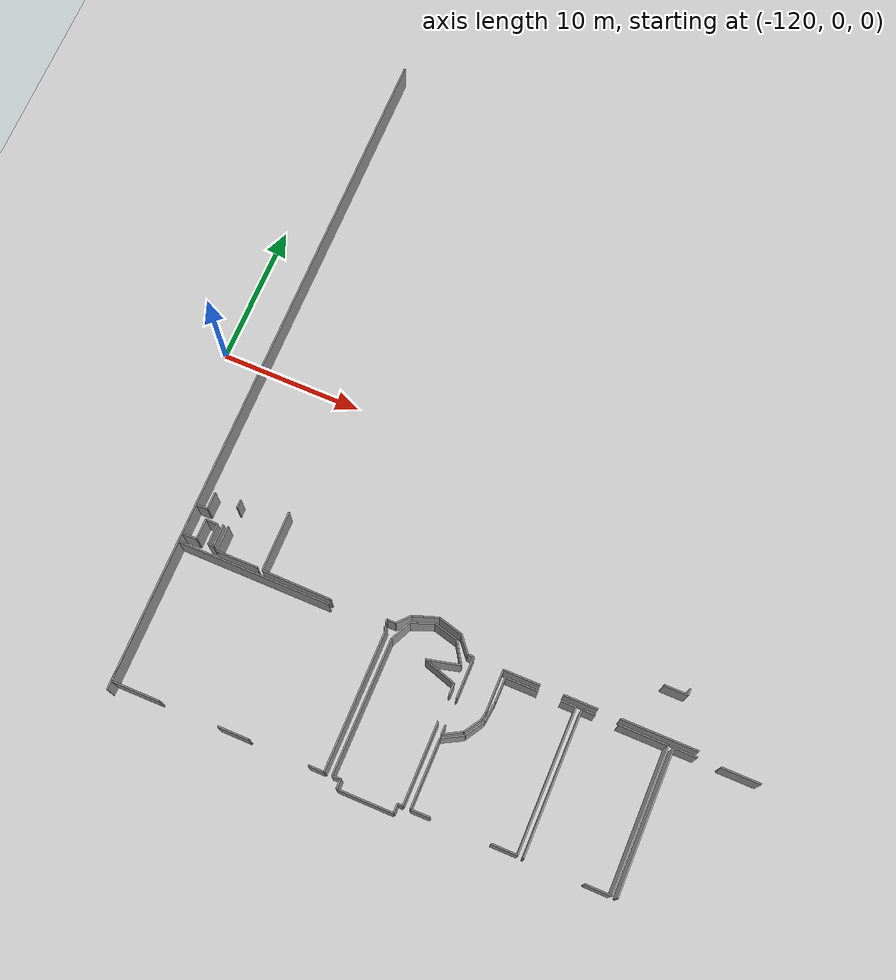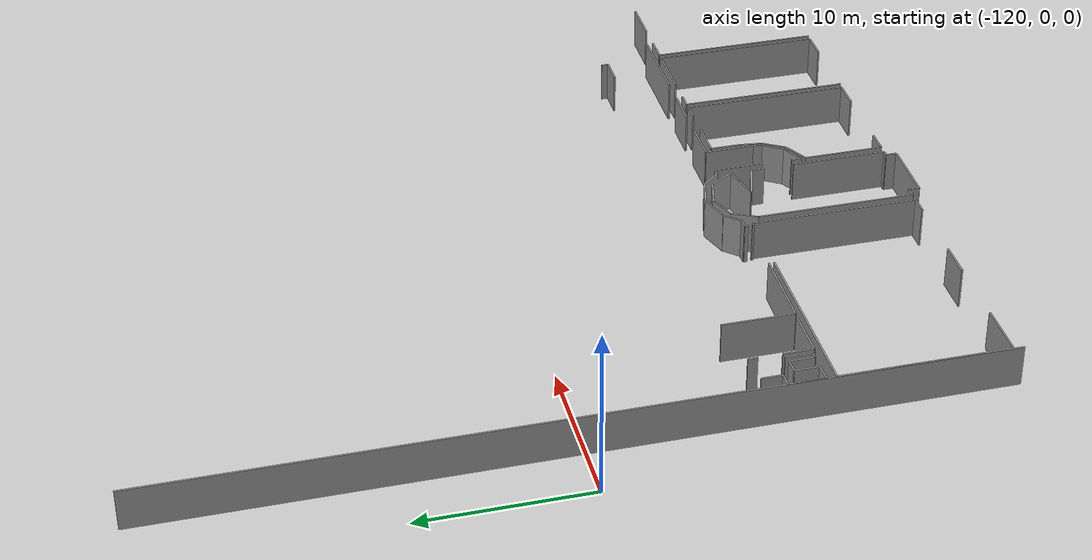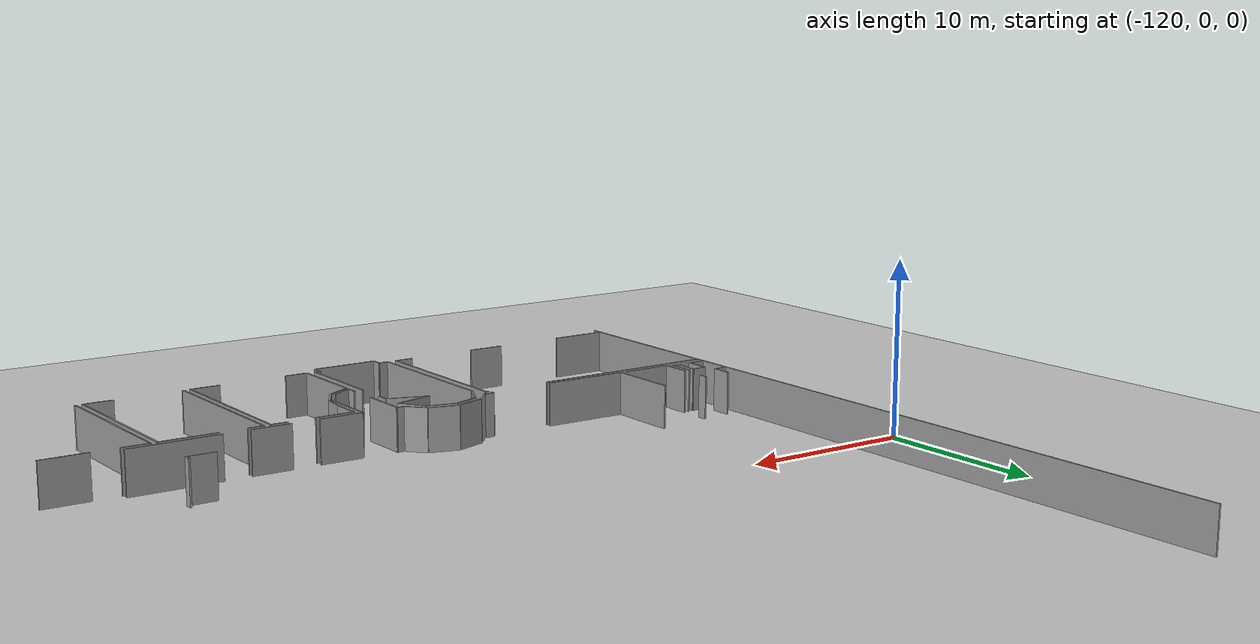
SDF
<sdf version="1.6">
 <world name="default">
  <model name="ground_plane">
   <static>1</static>
   <link name="link">
    <collision name="collision">
     <geometry><plane><normal>0 0 1</normal><size>100 100</size></plane></geometry>
     <surface><friction><ode><mu>100</mu><mu2>50</mu2></ode></friction></surface>
    </collision>
    <visual name="visual">
     <cast_shadows>0</cast_shadows>
     <geometry><plane><normal>0 0 1</normal><size>100 100</size></plane></geometry>
     <material>
      <script><uri>file://media/materials/scripts/gazebo.material</uri><name>Gazebo/Grey</name></script>
     </material>
    </visual>
   </link>
  </model>
  <model name="0510035343_A_40_1_102">
   <static>1</static>
   <link name="Wall_8">
    <collision name="Wall_8_Collision">
     <geometry><box><size>4.25859278301 0.1 2.5</size></box></geometry>
     <pose>2.12929639151 0 1.25 0 0 0</pose>
    </collision>
    <visual name="Wall_8_Visual">
     <pose>2.12929639151 0 1.25 0 0 0</pose>
     <geometry><box><size>4.25859278301 0.1 2.5</size></box></geometry>
     <material>
      <script><uri>file://media/materials/scripts/gazebo.material</uri><name>Gazebo/Grey</name></script>
      <ambient>1 1 1 1</ambient>
     </material>
    </visual>
    <pose>5.92186359453 -37.6509568695 0 0 0 1.57079632679</pose>
   </link>
   <link name="Wall_24">
    <collision name="Wall_24_Collision">
     <geometry><box><size>1.65362277445 0.1 2.5</size></box></geometry>
     <pose>0.826811387223 0 1.25 0 0 0</pose>
    </collision>
    <visual name="Wall_24_Visual">
     <pose>0.826811387223 0 1.25 0 0 0</pose>
     <geometry><box><size>1.65362277445 0.1 2.5</size></box></geometry>
     <material>
      <script><uri>file://media/materials/scripts/gazebo.material</uri><name>Gazebo/Grey</name></script>
      <ambient>1 1 1 1</ambient>
     </material>
    </visual>
    <pose>32.8454727221 -34.5011266622 0 0 0 0.0</pose>
   </link>
   <link name="Wall_25">
    <collision name="Wall_25_Collision">
     <geometry><box><size>0.434923355232 0.1 2.5</size></box></geometry>
     <pose>0.217461677616 0 1.25 0 0 0</pose>
    </collision>
    <visual name="Wall_25_Visual">
     <pose>0.217461677616 0 1.25 0 0 0</pose>
     <geometry><box><size>0.434923355232 0.1 2.5</size></box></geometry>
     <material>
      <script><uri>file://media/materials/scripts/gazebo.material</uri><name>Gazebo/Grey</name></script>
      <ambient>1 1 1 1</ambient>
     </material>
    </visual>
    <pose>34.4990954965 -34.5011266622 0 0 0 1.57079632679</pose>
   </link>
   <link name="Wall_39">
    <collision name="Wall_39_Collision">
     <geometry><box><size>5.33180995906 0.1 2.5</size></box></geometry>
     <pose>2.66590497953 0 1.25 0 0 0</pose>
    </collision>
    <visual name="Wall_39_Visual">
     <pose>2.66590497953 0 1.25 0 0 0</pose>
     <geometry><box><size>5.33180995906 0.1 2.5</size></box></geometry>
     <material>
      <script><uri>file://media/materials/scripts/gazebo.material</uri><name>Gazebo/Grey</name></script>
      <ambient>1 1 1 1</ambient>
     </material>
    </visual>
    <pose>36.3885873877 -37.5938303342 0 0 0 3.14159265359</pose>
   </link>
   <link name="Wall_40">
    <collision name="Wall_40_Collision">
     <geometry><box><size>2.36224570758 0.1 2.5</size></box></geometry>
     <pose>1.18112285379 0 1.25 0 0 0</pose>
    </collision>
    <visual name="Wall_40_Visual">
     <pose>1.18112285379 0 1.25 0 0 0</pose>
     <geometry><box><size>2.36224570758 0.1 2.5</size></box></geometry>
     <material>
      <script><uri>file://media/materials/scripts/gazebo.material</uri><name>Gazebo/Grey</name></script>
      <ambient>1 1 1 1</ambient>
     </material>
    </visual>
    <pose>29.4991272335 -37.5938303342 0 0 0 3.14159265359</pose>
   </link>
   <link name="Wall_41">
    <collision name="Wall_41_Collision">
     <geometry><box><size>2.56891681742 0.1 2.5</size></box></geometry>
     <pose>1.28445840871 0 1.25 0 0 0</pose>
    </collision>
    <visual name="Wall_41_Visual">
     <pose>1.28445840871 0 1.25 0 0 0</pose>
     <geometry><box><size>2.56891681742 0.1 2.5</size></box></geometry>
     <material>
      <script><uri>file://media/materials/scripts/gazebo.material</uri><name>Gazebo/Grey</name></script>
      <ambient>1 1 1 1</ambient>
     </material>
    </visual>
    <pose>25.525151544 -37.5938303342 0 0 0 3.14159265359</pose>
   </link>
   <link name="Wall_42">
    <collision name="Wall_42_Collision">
     <geometry><box><size>2.96626360722 0.1 2.5</size></box></geometry>
     <pose>1.48313180361 0 1.25 0 0 0</pose>
    </collision>
    <visual name="Wall_42_Visual">
     <pose>1.48313180361 0 1.25 0 0 0</pose>
     <geometry><box><size>2.96626360722 0.1 2.5</size></box></geometry>
     <material>
      <script><uri>file://media/materials/scripts/gazebo.material</uri><name>Gazebo/Grey</name></script>
      <ambient>1 1 1 1</ambient>
     </material>
    </visual>
    <pose>22.9562347266 -37.5938303342 0 0 0 -1.57079632679</pose>
   </link>
   <link name="Wall_43">
    <collision name="Wall_43_Collision">
     <geometry><box><size>0.563709836177 0.1 2.5</size></box></geometry>
     <pose>0.281854918089 0 1.25 0 0 0</pose>
    </collision>
    <visual name="Wall_43_Visual">
     <pose>0.281854918089 0 1.25 0 0 0</pose>
     <geometry><box><size>0.563709836177 0.1 2.5</size></box></geometry>
     <material>
      <script><uri>file://media/materials/scripts/gazebo.material</uri><name>Gazebo/Grey</name></script>
      <ambient>1 1 1 1</ambient>
     </material>
    </visual>
    <pose>22.9562347266 -40.5600939414 0 0 0 -1.74142440143</pose>
   </link>
   <link name="Wall_44">
    <collision name="Wall_44_Collision">
     <geometry><box><size>1.35169558649 0.1 2.5</size></box></geometry>
     <pose>0.675847793244 0 1.25 0 0 0</pose>
    </collision>
    <visual name="Wall_44_Visual">
     <pose>0.675847793244 0 1.25 0 0 0</pose>
     <geometry><box><size>1.35169558649 0.1 2.5</size></box></geometry>
     <material>
      <script><uri>file://media/materials/scripts/gazebo.material</uri><name>Gazebo/Grey</name></script>
      <ambient>1 1 1 1</ambient>
     </material>
    </visual>
    <pose>22.860516043 -41.11561776 0 0 0 -2.1432736838</pose>
   </link>
   <link name="Wall_45">
    <collision name="Wall_45_Collision">
     <geometry><box><size>1.43572895688 0.1 2.5</size></box></geometry>
     <pose>0.71786447844 0 1.25 0 0 0</pose>
    </collision>
    <visual name="Wall_45_Visual">
     <pose>0.71786447844 0 1.25 0 0 0</pose>
     <geometry><box><size>1.43572895688 0.1 2.5</size></box></geometry>
     <material>
      <script><uri>file://media/materials/scripts/gazebo.material</uri><name>Gazebo/Grey</name></script>
      <ambient>1 1 1 1</ambient>
     </material>
    </visual>
    <pose>22.1282808087 -42.2518010727 0 0 0 -2.62683343816</pose>
   </link>
   <link name="Wall_46">
    <collision name="Wall_46_Collision">
     <geometry><box><size>0.643879526484 0.1 2.5</size></box></geometry>
     <pose>0.321939763242 0 1.25 0 0 0</pose>
    </collision>
    <visual name="Wall_46_Visual">
     <pose>0.321939763242 0 1.25 0 0 0</pose>
     <geometry><box><size>0.643879526484 0.1 2.5</size></box></geometry>
     <material>
      <script><uri>file://media/materials/scripts/gazebo.material</uri><name>Gazebo/Grey</name></script>
      <ambient>1 1 1 1</ambient>
     </material>
    </visual>
    <pose>20.8786061125 -42.9586467359 0 0 0 1.57079632679</pose>
   </link>
   <link name="Wall_47">
    <collision name="Wall_47_Collision">
     <geometry><box><size>2.92843314609 0.1 2.5</size></box></geometry>
     <pose>1.46421657304 0 1.25 0 0 0</pose>
    </collision>
    <visual name="Wall_47_Visual">
     <pose>1.46421657304 0 1.25 0 0 0</pose>
     <geometry><box><size>2.92843314609 0.1 2.5</size></box></geometry>
     <material>
      <script><uri>file://media/materials/scripts/gazebo.material</uri><name>Gazebo/Grey</name></script>
      <ambient>1 1 1 1</ambient>
     </material>
    </visual>
    <pose>20.8786061125 -40.4844330191 0 0 0 1.57079632679</pose>
   </link>
   <link name="Wall_48">
    <collision name="Wall_48_Collision">
     <geometry><box><size>0.416388968231 0.1 2.5</size></box></geometry>
     <pose>0.208194484116 0 1.25 0 0 0</pose>
    </collision>
    <visual name="Wall_48_Visual">
     <pose>0.208194484116 0 1.25 0 0 0</pose>
     <geometry><box><size>0.416388968231 0.1 2.5</size></box></geometry>
     <material>
      <script><uri>file://media/materials/scripts/gazebo.material</uri><name>Gazebo/Grey</name></script>
      <ambient>1 1 1 1</ambient>
     </material>
    </visual>
    <pose>20.8786061125 -37.5559998731 0 0 0 3.14159265359</pose>
   </link>
   <link name="Wall_49">
    <collision name="Wall_49_Collision">
     <geometry><box><size>1.3626393889 0.1 2.5</size></box></geometry>
     <pose>0.681319694451 0 1.25 0 0 0</pose>
    </collision>
    <visual name="Wall_49_Visual">
     <pose>0.681319694451 0 1.25 0 0 0</pose>
     <geometry><box><size>1.3626393889 0.1 2.5</size></box></geometry>
     <material>
      <script><uri>file://media/materials/scripts/gazebo.material</uri><name>Gazebo/Grey</name></script>
      <ambient>1 1 1 1</ambient>
     </material>
    </visual>
    <pose>20.4622171443 -37.5559998731 0 0 0 2.26436562674</pose>
   </link>
   <link name="Wall_50">
    <collision name="Wall_50_Collision">
     <geometry><box><size>1.78800674131 0.1 2.5</size></box></geometry>
     <pose>0.894003370653 0 1.25 0 0 0</pose>
    </collision>
    <visual name="Wall_50_Visual">
     <pose>0.894003370653 0 1.25 0 0 0</pose>
     <geometry><box><size>1.78800674131 0.1 2.5</size></box></geometry>
     <material>
      <script><uri>file://media/materials/scripts/gazebo.material</uri><name>Gazebo/Grey</name></script>
      <ambient>1 1 1 1</ambient>
     </material>
    </visual>
    <pose>19.5911009553 -36.5081722682 0 0 0 2.88459417947</pose>
   </link>
   <link name="Wall_51">
    <collision name="Wall_51_Collision">
     <geometry><box><size>1.81237818113 0.1 2.5</size></box></geometry>
     <pose>0.906189090563 0 1.25 0 0 0</pose>
    </collision>
    <visual name="Wall_51_Visual">
     <pose>0.906189090563 0 1.25 0 0 0</pose>
     <geometry><box><size>1.81237818113 0.1 2.5</size></box></geometry>
     <material>
      <script><uri>file://media/materials/scripts/gazebo.material</uri><name>Gazebo/Grey</name></script>
      <ambient>1 1 1 1</ambient>
     </material>
    </visual>
    <pose>17.8618172586 -36.0536989432 0 0 0 -2.8154563567</pose>
   </link>
   <link name="Wall_52">
    <collision name="Wall_52_Collision">
     <geometry><box><size>1.16155235011 0.1 2.5</size></box></geometry>
     <pose>0.580776175057 0 1.25 0 0 0</pose>
    </collision>
    <visual name="Wall_52_Visual">
     <pose>0.580776175057 0 1.25 0 0 0</pose>
     <geometry><box><size>1.16155235011 0.1 2.5</size></box></geometry>
     <material>
      <script><uri>file://media/materials/scripts/gazebo.material</uri><name>Gazebo/Grey</name></script>
      <ambient>1 1 1 1</ambient>
     </material>
    </visual>
    <pose>16.1449744517 -36.6343584373 0 0 0 -2.30996410844</pose>
   </link>
   <link name="Wall_53">
    <collision name="Wall_53_Collision">
     <geometry><box><size>0.606049065346 0.1 2.5</size></box></geometry>
     <pose>0.303024532673 0 1.25 0 0 0</pose>
    </collision>
    <visual name="Wall_53_Visual">
     <pose>0.303024532673 0 1.25 0 0 0</pose>
     <geometry><box><size>0.606049065346 0.1 2.5</size></box></geometry>
     <material>
      <script><uri>file://media/materials/scripts/gazebo.material</uri><name>Gazebo/Grey</name></script>
      <ambient>1 1 1 1</ambient>
     </material>
    </visual>
    <pose>15.3624678663 -37.4927798407 0 0 0 3.14159265359</pose>
   </link>
   <link name="Wall_54">
    <collision name="Wall_54_Collision">
     <geometry><box><size>0.214541876924 0.1 2.5</size></box></geometry>
     <pose>0.107270938462 0 1.25 0 0 0</pose>
    </collision>
    <visual name="Wall_54_Visual">
     <pose>0.107270938462 0 1.25 0 0 0</pose>
     <geometry><box><size>0.214541876924 0.1 2.5</size></box></geometry>
     <material>
      <script><uri>file://media/materials/scripts/gazebo.material</uri><name>Gazebo/Grey</name></script>
      <ambient>1 1 1 1</ambient>
     </material>
    </visual>
    <pose>14.756418801 -37.4927798407 0 0 0 -1.57079632679</pose>
   </link>
   <link name="Wall_55">
    <collision name="Wall_55_Collision">
     <geometry><box><size>4.95661869106 0.1 2.5</size></box></geometry>
     <pose>2.47830934553 0 1.25 0 0 0</pose>
    </collision>
    <visual name="Wall_55_Visual">
     <pose>2.47830934553 0 1.25 0 0 0</pose>
     <geometry><box><size>4.95661869106 0.1 2.5</size></box></geometry>
     <material>
      <script><uri>file://media/materials/scripts/gazebo.material</uri><name>Gazebo/Grey</name></script>
      <ambient>1 1 1 1</ambient>
     </material>
    </visual>
    <pose>10.878161795 -37.7073217176 0 0 0 3.1302207756</pose>
   </link>
   <link name="Wall_77">
    <collision name="Wall_77_Collision">
     <geometry><box><size>10.0159319559 0.1 2.5</size></box></geometry>
     <pose>5.00796597797 0 1.25 0 0 0</pose>
    </collision>
    <visual name="Wall_77_Visual">
     <pose>5.00796597797 0 1.25 0 0 0</pose>
     <geometry><box><size>10.0159319559 0.1 2.5</size></box></geometry>
     <material>
      <script><uri>file://media/materials/scripts/gazebo.material</uri><name>Gazebo/Grey</name></script>
      <ambient>1 1 1 1</ambient>
     </material>
    </visual>
    <pose>0.0266590497953 -48.038846044 0 0 0 1.57079632679</pose>
   </link>
   <link name="Wall_78">
    <collision name="Wall_78_Collision">
     <geometry><box><size>10.8431241867 0.1 2.5</size></box></geometry>
     <pose>5.42156209337 0 1.25 0 0 0</pose>
    </collision>
    <visual name="Wall_78_Visual">
     <pose>5.42156209337 0 1.25 0 0 0</pose>
     <geometry><box><size>10.8431241867 0.1 2.5</size></box></geometry>
     <material>
      <script><uri>file://media/materials/scripts/gazebo.material</uri><name>Gazebo/Grey</name></script>
      <ambient>1 1 1 1</ambient>
     </material>
    </visual>
    <pose>0.0266590497953 -38.022914088 0 0 0 0.0</pose>
   </link>
   <link name="Wall_79">
    <collision name="Wall_79_Collision">
     <geometry><box><size>0.198800342759 0.1 2.5</size></box></geometry>
     <pose>0.0994001713796 0 1.25 0 0 0</pose>
    </collision>
    <visual name="Wall_79_Visual">
     <pose>0.0994001713796 0 1.25 0 0 0</pose>
     <geometry><box><size>0.198800342759 0.1 2.5</size></box></geometry>
     <material>
      <script><uri>file://media/materials/scripts/gazebo.material</uri><name>Gazebo/Grey</name></script>
      <ambient>1 1 1 1</ambient>
     </material>
    </visual>
    <pose>14.751086991 -38.022914088 0 0 0 0.0</pose>
   </link>
   <link name="Wall_80">
    <collision name="Wall_80_Collision">
     <geometry><box><size>9.99765146466 0.1 2.5</size></box></geometry>
     <pose>4.99882573233 0 1.25 0 0 0</pose>
    </collision>
    <visual name="Wall_80_Visual">
     <pose>4.99882573233 0 1.25 0 0 0</pose>
     <geometry><box><size>9.99765146466 0.1 2.5</size></box></geometry>
     <material>
      <script><uri>file://media/materials/scripts/gazebo.material</uri><name>Gazebo/Grey</name></script>
      <ambient>1 1 1 1</ambient>
     </material>
    </visual>
    <pose>14.9498873338 -38.022914088 0 0 0 -1.57079632679</pose>
   </link>
   <link name="Wall_81">
    <collision name="Wall_81_Collision">
     <geometry><box><size>1.10241518296 0.1 2.5</size></box></geometry>
     <pose>0.551207591482 0 1.25 0 0 0</pose>
    </collision>
    <visual name="Wall_81_Visual">
     <pose>0.551207591482 0 1.25 0 0 0</pose>
     <geometry><box><size>1.10241518296 0.1 2.5</size></box></geometry>
     <material>
      <script><uri>file://media/materials/scripts/gazebo.material</uri><name>Gazebo/Grey</name></script>
      <ambient>1 1 1 1</ambient>
     </material>
    </visual>
    <pose>14.9498873338 -48.0205655527 0 0 0 3.14159265359</pose>
   </link>
   <link name="Wall_82">
    <collision name="Wall_82_Collision">
     <geometry><box><size>2.19645180742 0.1 2.5</size></box></geometry>
     <pose>1.09822590371 0 1.25 0 0 0</pose>
    </collision>
    <visual name="Wall_82_Visual">
     <pose>1.09822590371 0 1.25 0 0 0</pose>
     <geometry><box><size>2.19645180742 0.1 2.5</size></box></geometry>
     <material>
      <script><uri>file://media/materials/scripts/gazebo.material</uri><name>Gazebo/Grey</name></script>
      <ambient>1 1 1 1</ambient>
     </material>
    </visual>
    <pose>9.71988955537 -48.0205655527 0 0 0 3.14159265359</pose>
   </link>
   <link name="Wall_83">
    <collision name="Wall_83_Collision">
     <geometry><box><size>3.37076904709 0.1 2.5</size></box></geometry>
     <pose>1.68538452354 0 1.25 0 0 0</pose>
    </collision>
    <visual name="Wall_83_Visual">
     <pose>1.68538452354 0 1.25 0 0 0</pose>
     <geometry><box><size>3.37076904709 0.1 2.5</size></box></geometry>
     <material>
      <script><uri>file://media/materials/scripts/gazebo.material</uri><name>Gazebo/Grey</name></script>
      <ambient>1 1 1 1</ambient>
     </material>
    </visual>
    <pose>3.39737852677 -48.0205655527 0 0 0 -3.13616938648</pose>
   </link>
   <link name="Wall_84">
    <collision name="Wall_84_Collision">
     <geometry><box><size>4.81894062014 0.1 2.5</size></box></geometry>
     <pose>2.40947031007 0 1.25 0 0 0</pose>
    </collision>
    <visual name="Wall_84_Visual">
     <pose>2.40947031007 0 1.25 0 0 0</pose>
     <geometry><box><size>4.81894062014 0.1 2.5</size></box></geometry>
     <material>
      <script><uri>file://media/materials/scripts/gazebo.material</uri><name>Gazebo/Grey</name></script>
      <ambient>1 1 1 1</ambient>
     </material>
    </visual>
    <pose>20.8829223396 -48.023866197 0 0 0 1.57079632679</pose>
   </link>
   <link name="Wall_85">
    <collision name="Wall_85_Collision">
     <geometry><box><size>1.62601129733 0.1 2.5</size></box></geometry>
     <pose>0.813005648665 0 1.25 0 0 0</pose>
    </collision>
    <visual name="Wall_85_Visual">
     <pose>0.813005648665 0 1.25 0 0 0</pose>
     <geometry><box><size>1.62601129733 0.1 2.5</size></box></geometry>
     <material>
      <script><uri>file://media/materials/scripts/gazebo.material</uri><name>Gazebo/Grey</name></script>
      <ambient>1 1 1 1</ambient>
     </material>
    </visual>
    <pose>20.8829223396 -43.2049255768 0 0 0 0.499757962233</pose>
   </link>
   <link name="Wall_86">
    <collision name="Wall_86_Collision">
     <geometry><box><size>1.51167479442 0.1 2.5</size></box></geometry>
     <pose>0.755837397212 0 1.25 0 0 0</pose>
    </collision>
    <visual name="Wall_86_Visual">
     <pose>0.755837397212 0 1.25 0 0 0</pose>
     <geometry><box><size>1.51167479442 0.1 2.5</size></box></geometry>
     <material>
      <script><uri>file://media/materials/scripts/gazebo.material</uri><name>Gazebo/Grey</name></script>
      <ambient>1 1 1 1</ambient>
     </material>
    </visual>
    <pose>22.3100701387 -42.4257196357 0 0 0 1.02925345804</pose>
   </link>
   <link name="Wall_87">
    <collision name="Wall_87_Collision">
     <geometry><box><size>1.37082057153 0.1 2.5</size></box></geometry>
     <pose>0.685410285767 0 1.25 0 0 0</pose>
    </collision>
    <visual name="Wall_87_Visual">
     <pose>0.685410285767 0 1.25 0 0 0</pose>
     <geometry><box><size>1.37082057153 0.1 2.5</size></box></geometry>
     <material>
      <script><uri>file://media/materials/scripts/gazebo.material</uri><name>Gazebo/Grey</name></script>
      <ambient>1 1 1 1</ambient>
     </material>
    </visual>
    <pose>23.0892760799 -41.1303437113 0 0 0 1.45030080905</pose>
   </link>
   <link name="Wall_88">
    <collision name="Wall_88_Collision">
     <geometry><box><size>1.76384275138 0.1 2.5</size></box></geometry>
     <pose>0.881921375692 0 1.25 0 0 0</pose>
    </collision>
    <visual name="Wall_88_Visual">
     <pose>0.881921375692 0 1.25 0 0 0</pose>
     <geometry><box><size>1.76384275138 0.1 2.5</size></box></geometry>
     <material>
      <script><uri>file://media/materials/scripts/gazebo.material</uri><name>Gazebo/Grey</name></script>
      <ambient>1 1 1 1</ambient>
     </material>
    </visual>
    <pose>23.2540543972 -39.7694626932 0 0 0 1.56503850932</pose>
   </link>
   <link name="Wall_89">
    <collision name="Wall_89_Collision">
     <geometry><box><size>2.29090101241 0.1 2.5</size></box></geometry>
     <pose>1.1454505062 0 1.25 0 0 0</pose>
    </collision>
    <visual name="Wall_89_Visual">
     <pose>1.1454505062 0 1.25 0 0 0</pose>
     <geometry><box><size>2.29090101241 0.1 2.5</size></box></geometry>
     <material>
      <script><uri>file://media/materials/scripts/gazebo.material</uri><name>Gazebo/Grey</name></script>
      <ambient>1 1 1 1</ambient>
     </material>
    </visual>
    <pose>23.2642102256 -38.0056491796 0 0 0 0.0</pose>
   </link>
   <link name="Wall_90">
    <collision name="Wall_90_Collision">
     <geometry><box><size>1.0209146593 0.1 2.5</size></box></geometry>
     <pose>0.510457329652 0 1.25 0 0 0</pose>
    </collision>
    <visual name="Wall_90_Visual">
     <pose>0.510457329652 0 1.25 0 0 0</pose>
     <geometry><box><size>1.0209146593 0.1 2.5</size></box></geometry>
     <material>
      <script><uri>file://media/materials/scripts/gazebo.material</uri><name>Gazebo/Grey</name></script>
      <ambient>1 1 1 1</ambient>
     </material>
    </visual>
    <pose>27.1396743787 -38.0056491796 0 0 0 0.0</pose>
   </link>
   <link name="Wall_91">
    <collision name="Wall_91_Collision">
     <geometry><box><size>10.0022215875 0.1 2.5</size></box></geometry>
     <pose>5.00111079374 0 1.25 0 0 0</pose>
    </collision>
    <visual name="Wall_91_Visual">
     <pose>5.00111079374 0 1.25 0 0 0</pose>
     <geometry><box><size>10.0022215875 0.1 2.5</size></box></geometry>
     <material>
      <script><uri>file://media/materials/scripts/gazebo.material</uri><name>Gazebo/Grey</name></script>
      <ambient>1 1 1 1</ambient>
     </material>
    </visual>
    <pose>28.1605890381 -38.0056491796 0 0 0 -1.57079632679</pose>
   </link>
   <link name="Wall_92">
    <collision name="Wall_92_Collision">
     <geometry><box><size>1.80342124472 0.1 2.5</size></box></geometry>
     <pose>0.901710622362 0 1.25 0 0 0</pose>
    </collision>
    <visual name="Wall_92_Visual">
     <pose>0.901710622362 0 1.25 0 0 0</pose>
     <geometry><box><size>1.80342124472 0.1 2.5</size></box></geometry>
     <material>
      <script><uri>file://media/materials/scripts/gazebo.material</uri><name>Gazebo/Grey</name></script>
      <ambient>1 1 1 1</ambient>
     </material>
    </visual>
    <pose>28.1605890381 -48.0078707671 0 0 0 3.14159265359</pose>
   </link>
   <link name="Wall_93">
    <collision name="Wall_93_Collision">
     <geometry><box><size>1.37036851484 0.1 2.5</size></box></geometry>
     <pose>0.685184257419 0 1.25 0 0 0</pose>
    </collision>
    <visual name="Wall_93_Visual">
     <pose>0.685184257419 0 1.25 0 0 0</pose>
     <geometry><box><size>1.37036851484 0.1 2.5</size></box></geometry>
     <material>
      <script><uri>file://media/materials/scripts/gazebo.material</uri><name>Gazebo/Grey</name></script>
      <ambient>1 1 1 1</ambient>
     </material>
    </visual>
    <pose>22.2531974991 -48.0078707671 0 0 0 -3.129920032</pose>
   </link>
   <link name="Wall_94">
    <collision name="Wall_94_Collision">
     <geometry><box><size>10.0598559142 0.1 2.5</size></box></geometry>
     <pose>5.02992795709 0 1.25 0 0 0</pose>
    </collision>
    <visual name="Wall_94_Visual">
     <pose>5.02992795709 0 1.25 0 0 0</pose>
     <geometry><box><size>10.0598559142 0.1 2.5</size></box></geometry>
     <material>
      <script><uri>file://media/materials/scripts/gazebo.material</uri><name>Gazebo/Grey</name></script>
      <ambient>1 1 1 1</ambient>
     </material>
    </visual>
    <pose>28.5647910121 -48.0561109524 0 0 0 1.57079632679</pose>
   </link>
   <link name="Wall_95">
    <collision name="Wall_95_Collision">
     <geometry><box><size>0.921133644356 0.1 2.5</size></box></geometry>
     <pose>0.460566822178 0 1.25 0 0 0</pose>
    </collision>
    <visual name="Wall_95_Visual">
     <pose>0.460566822178 0 1.25 0 0 0</pose>
     <geometry><box><size>0.921133644356 0.1 2.5</size></box></geometry>
     <material>
      <script><uri>file://media/materials/scripts/gazebo.material</uri><name>Gazebo/Grey</name></script>
      <ambient>1 1 1 1</ambient>
     </material>
    </visual>
    <pose>28.5647910121 -37.9962550382 0 0 0 0.0</pose>
   </link>
   <link name="Wall_96">
    <collision name="Wall_96_Collision">
     <geometry><box><size>3.36944999841 0.1 2.5</size></box></geometry>
     <pose>1.68472499921 0 1.25 0 0 0</pose>
    </collision>
    <visual name="Wall_96_Visual">
     <pose>1.68472499921 0 1.25 0 0 0</pose>
     <geometry><box><size>3.36944999841 0.1 2.5</size></box></geometry>
     <material>
      <script><uri>file://media/materials/scripts/gazebo.material</uri><name>Gazebo/Grey</name></script>
      <ambient>1 1 1 1</ambient>
     </material>
    </visual>
    <pose>31.07505792 -37.9962550382 0 0 0 0.0</pose>
   </link>
   <link name="Wall_97">
    <collision name="Wall_97_Collision">
     <geometry><box><size>10.0164397474 0.1 2.5</size></box></geometry>
     <pose>5.00821987369 0 1.25 0 0 0</pose>
    </collision>
    <visual name="Wall_97_Visual">
     <pose>5.00821987369 0 1.25 0 0 0</pose>
     <geometry><box><size>10.0164397474 0.1 2.5</size></box></geometry>
     <material>
      <script><uri>file://media/materials/scripts/gazebo.material</uri><name>Gazebo/Grey</name></script>
      <ambient>1 1 1 1</ambient>
     </material>
    </visual>
    <pose>34.4445079184 -37.9962550382 0 0 0 -1.57079632679</pose>
   </link>
   <link name="Wall_98">
    <collision name="Wall_98_Collision">
     <geometry><box><size>1.78361737916 0.1 2.5</size></box></geometry>
     <pose>0.891808689581 0 1.25 0 0 0</pose>
    </collision>
    <visual name="Wall_98_Visual">
     <pose>0.891808689581 0 1.25 0 0 0</pose>
     <geometry><box><size>1.78361737916 0.1 2.5</size></box></geometry>
     <material>
      <script><uri>file://media/materials/scripts/gazebo.material</uri><name>Gazebo/Grey</name></script>
      <ambient>1 1 1 1</ambient>
     </material>
    </visual>
    <pose>34.4445079184 -48.0126947856 0 0 0 3.14159265359</pose>
   </link>
   <link name="Wall_99">
    <collision name="Wall_99_Collision">
     <geometry><box><size>0.0645239875526 0.1 2.5</size></box></geometry>
     <pose>0.0322619937763 0 1.25 0 0 0</pose>
    </collision>
    <visual name="Wall_99_Visual">
     <pose>0.0322619937763 0 1.25 0 0 0</pose>
     <geometry><box><size>0.0645239875526 0.1 2.5</size></box></geometry>
     <material>
      <script><uri>file://media/materials/scripts/gazebo.material</uri><name>Gazebo/Grey</name></script>
      <ambient>1 1 1 1</ambient>
     </material>
    </visual>
    <pose>28.612523406 -48.0126947856 0 0 0 -2.40351290316</pose>
   </link>
   <link name="Wall_100">
    <collision name="Wall_100_Collision">
     <geometry><box><size>10.0438604843 0.1 2.5</size></box></geometry>
     <pose>5.02193024215 0 1.25 0 0 0</pose>
    </collision>
    <visual name="Wall_100_Visual">
     <pose>5.02193024215 0 1.25 0 0 0</pose>
     <geometry><box><size>10.0438604843 0.1 2.5</size></box></geometry>
     <material>
      <script><uri>file://media/materials/scripts/gazebo.material</uri><name>Gazebo/Grey</name></script>
      <ambient>1 1 1 1</ambient>
     </material>
    </visual>
    <pose>34.826113174 -48.037068774 0 0 0 1.57079632679</pose>
   </link>
   <link name="Wall_101">
    <collision name="Wall_101_Collision">
     <geometry><box><size>1.59979688343 0.1 2.5</size></box></geometry>
     <pose>0.799898441715 0 1.25 0 0 0</pose>
    </collision>
    <visual name="Wall_101_Visual">
     <pose>0.799898441715 0 1.25 0 0 0</pose>
     <geometry><box><size>1.59979688343 0.1 2.5</size></box></geometry>
     <material>
      <script><uri>file://media/materials/scripts/gazebo.material</uri><name>Gazebo/Grey</name></script>
      <ambient>1 1 1 1</ambient>
     </material>
    </visual>
    <pose>34.826113174 -37.9932082897 0 0 0 0.0</pose>
   </link>
   <link name="Wall_102">
    <collision name="Wall_102_Collision">
     <geometry><box><size>2.7065282935 0.1 2.5</size></box></geometry>
     <pose>1.35326414675 0 1.25 0 0 0</pose>
    </collision>
    <visual name="Wall_102_Visual">
     <pose>1.35326414675 0 1.25 0 0 0</pose>
     <geometry><box><size>2.7065282935 0.1 2.5</size></box></geometry>
     <material>
      <script><uri>file://media/materials/scripts/gazebo.material</uri><name>Gazebo/Grey</name></script>
      <ambient>1 1 1 1</ambient>
     </material>
    </visual>
    <pose>38.0094576153 -37.9932082897 0 0 0 0.0</pose>
   </link>
   <link name="Wall_105">
    <collision name="Wall_105_Collision">
     <geometry><box><size>0.0710459001406 0.1 2.5</size></box></geometry>
     <pose>0.0355229500703 0 1.25 0 0 0</pose>
    </collision>
    <visual name="Wall_105_Visual">
     <pose>0.0355229500703 0 1.25 0 0 0</pose>
     <geometry><box><size>0.0710459001406 0.1 2.5</size></box></geometry>
     <material>
      <script><uri>file://media/materials/scripts/gazebo.material</uri><name>Gazebo/Grey</name></script>
      <ambient>1 1 1 1</ambient>
     </material>
    </visual>
    <pose>34.883493605 -47.9951759815 0 0 0 -2.51095716799</pose>
   </link>
   <link name="Wall_148">
    <collision name="Wall_148_Collision">
     <geometry><box><size>9.4873224418 0.1 2.5</size></box></geometry>
     <pose>4.7436612209 0 1.25 0 0 0</pose>
    </collision>
    <visual name="Wall_148_Visual">
     <pose>4.7436612209 0 1.25 0 0 0</pose>
     <geometry><box><size>9.4873224418 0.1 2.5</size></box></geometry>
     <material>
      <script><uri>file://media/materials/scripts/gazebo.material</uri><name>Gazebo/Grey</name></script>
      <ambient>1 1 1 1</ambient>
     </material>
    </visual>
    <pose>15.5107429623 -48.0467168111 0 0 0 1.57026109522</pose>
   </link>
   <link name="Wall_149">
    <collision name="Wall_149_Collision">
     <geometry><box><size>1.62334813182 0.1 2.5</size></box></geometry>
     <pose>0.811674065908 0 1.25 0 0 0</pose>
    </collision>
    <visual name="Wall_149_Visual">
     <pose>0.811674065908 0 1.25 0 0 0</pose>
     <geometry><box><size>1.62334813182 0.1 2.5</size></box></geometry>
     <material>
      <script><uri>file://media/materials/scripts/gazebo.material</uri><name>Gazebo/Grey</name></script>
      <ambient>1 1 1 1</ambient>
     </material>
    </visual>
    <pose>15.5158208766 -38.5593957282 0 0 0 1.12722437487</pose>
   </link>
   <link name="Wall_150">
    <collision name="Wall_150_Collision">
     <geometry><box><size>1.63099842924 0.1 2.5</size></box></geometry>
     <pose>0.81549921462 0 1.25 0 0 0</pose>
    </collision>
    <visual name="Wall_150_Visual">
     <pose>0.81549921462 0 1.25 0 0 0</pose>
     <geometry><box><size>1.63099842924 0.1 2.5</size></box></geometry>
     <material>
      <script><uri>file://media/materials/scripts/gazebo.material</uri><name>Gazebo/Grey</name></script>
      <ambient>1 1 1 1</ambient>
     </material>
    </visual>
    <pose>16.2125107112 -37.0931479895 0 0 0 0.363999738033</pose>
   </link>
   <link name="Wall_151">
    <collision name="Wall_151_Collision">
     <geometry><box><size>1.76757127518 0.1 2.5</size></box></geometry>
     <pose>0.883785637588 0 1.25 0 0 0</pose>
    </collision>
    <visual name="Wall_151_Visual">
     <pose>0.883785637588 0 1.25 0 0 0</pose>
     <geometry><box><size>1.76757127518 0.1 2.5</size></box></geometry>
     <material>
      <script><uri>file://media/materials/scripts/gazebo.material</uri><name>Gazebo/Grey</name></script>
      <ambient>1 1 1 1</ambient>
     </material>
    </visual>
    <pose>17.7366466724 -36.5124884954 0 0 0 -0.24905472751</pose>
   </link>
   <link name="Wall_152">
    <collision name="Wall_152_Collision">
     <geometry><box><size>1.683400068 0.1 2.5</size></box></geometry>
     <pose>0.841700033998 0 1.25 0 0 0</pose>
    </collision>
    <visual name="Wall_152_Visual">
     <pose>0.841700033998 0 1.25 0 0 0</pose>
     <geometry><box><size>1.683400068 0.1 2.5</size></box></geometry>
     <material>
      <script><uri>file://media/materials/scripts/gazebo.material</uri><name>Gazebo/Grey</name></script>
      <ambient>1 1 1 1</ambient>
     </material>
    </visual>
    <pose>19.4496810435 -36.9481735377 0 0 0 -1.00668139167</pose>
   </link>
   <link name="Wall_153">
    <collision name="Wall_153_Collision">
     <geometry><box><size>2.34504625142 0.1 2.5</size></box></geometry>
     <pose>1.17252312571 0 1.25 0 0 0</pose>
    </collision>
    <visual name="Wall_153_Visual">
     <pose>1.17252312571 0 1.25 0 0 0</pose>
     <geometry><box><size>2.34504625142 0.1 2.5</size></box></geometry>
     <material>
      <script><uri>file://media/materials/scripts/gazebo.material</uri><name>Gazebo/Grey</name></script>
      <ambient>1 1 1 1</ambient>
     </material>
    </visual>
    <pose>20.3497413437 -38.3707512139 0 0 0 -2.9040978979</pose>
   </link>
   <link name="Wall_154">
    <collision name="Wall_154_Collision">
     <geometry><box><size>2.40573817587 0.1 2.5</size></box></geometry>
     <pose>1.20286908794 0 1.25 0 0 0</pose>
    </collision>
    <visual name="Wall_154_Visual">
     <pose>1.20286908794 0 1.25 0 0 0</pose>
     <geometry><box><size>2.40573817587 0.1 2.5</size></box></geometry>
     <material>
      <script><uri>file://media/materials/scripts/gazebo.material</uri><name>Gazebo/Grey</name></script>
      <ambient>1 1 1 1</ambient>
     </material>
    </visual>
    <pose>18.0705195341 -38.9224665968 0 0 0 -0.306397955651</pose>
   </link>
   <link name="Wall_155">
    <collision name="Wall_155_Collision">
     <geometry><box><size>0.801802659558 0.1 2.5</size></box></geometry>
     <pose>0.400901329779 0 1.25 0 0 0</pose>
    </collision>
    <visual name="Wall_155_Visual">
     <pose>0.400901329779 0 1.25 0 0 0</pose>
     <geometry><box><size>0.801802659558 0.1 2.5</size></box></geometry>
     <material>
      <script><uri>file://media/materials/scripts/gazebo.material</uri><name>Gazebo/Grey</name></script>
      <ambient>1 1 1 1</ambient>
     </material>
    </visual>
    <pose>20.3642133993 -39.6481005427 0 0 0 -1.57079632679</pose>
   </link>
   <link name="Wall_156">
    <collision name="Wall_156_Collision">
     <geometry><box><size>5.74489828303 0.1 2.5</size></box></geometry>
     <pose>2.87244914152 0 1.25 0 0 0</pose>
    </collision>
    <visual name="Wall_156_Visual">
     <pose>2.87244914152 0 1.25 0 0 0</pose>
     <geometry><box><size>5.74489828303 0.1 2.5</size></box></geometry>
     <material>
      <script><uri>file://media/materials/scripts/gazebo.material</uri><name>Gazebo/Grey</name></script>
      <ambient>1 1 1 1</ambient>
     </material>
    </visual>
    <pose>20.3642133993 -42.2756672697 0 0 0 -1.57079632679</pose>
   </link>
   <link name="Wall_157">
    <collision name="Wall_157_Collision">
     <geometry><box><size>0.35646958012 0.1 2.5</size></box></geometry>
     <pose>0.17823479006 0 1.25 0 0 0</pose>
    </collision>
    <visual name="Wall_157_Visual">
     <pose>0.17823479006 0 1.25 0 0 0</pose>
     <geometry><box><size>0.35646958012 0.1 2.5</size></box></geometry>
     <material>
      <script><uri>file://media/materials/scripts/gazebo.material</uri><name>Gazebo/Grey</name></script>
      <ambient>1 1 1 1</ambient>
     </material>
    </visual>
    <pose>20.3642133993 -48.0205655527 0 0 0 3.14159265359</pose>
   </link>
   <link name="Wall_158">
    <collision name="Wall_158_Collision">
     <geometry><box><size>0.643625630772 0.1 2.5</size></box></geometry>
     <pose>0.321812815386 0 1.25 0 0 0</pose>
    </collision>
    <visual name="Wall_158_Visual">
     <pose>0.321812815386 0 1.25 0 0 0</pose>
     <geometry><box><size>0.643625630772 0.1 2.5</size></box></geometry>
     <material>
      <script><uri>file://media/materials/scripts/gazebo.material</uri><name>Gazebo/Grey</name></script>
      <ambient>1 1 1 1</ambient>
     </material>
    </visual>
    <pose>20.0077438192 -48.0205655527 0 0 0 -1.57079632679</pose>
   </link>
   <link name="Wall_159">
    <collision name="Wall_159_Collision">
     <geometry><box><size>3.91329461424 0.1 2.5</size></box></geometry>
     <pose>1.95664730712 0 1.25 0 0 0</pose>
    </collision>
    <visual name="Wall_159_Visual">
     <pose>1.95664730712 0 1.25 0 0 0</pose>
     <geometry><box><size>3.91329461424 0.1 2.5</size></box></geometry>
     <material>
      <script><uri>file://media/materials/scripts/gazebo.material</uri><name>Gazebo/Grey</name></script>
      <ambient>1 1 1 1</ambient>
     </material>
    </visual>
    <pose>20.0077438192 -48.6641911835 0 0 0 3.14159265359</pose>
   </link>
   <link name="Wall_160">
    <collision name="Wall_160_Collision">
     <geometry><box><size>0.656320416389 0.1 2.5</size></box></geometry>
     <pose>0.328160208194 0 1.25 0 0 0</pose>
    </collision>
    <visual name="Wall_160_Visual">
     <pose>0.328160208194 0 1.25 0 0 0</pose>
     <geometry><box><size>0.656320416389 0.1 2.5</size></box></geometry>
     <material>
      <script><uri>file://media/materials/scripts/gazebo.material</uri><name>Gazebo/Grey</name></script>
      <ambient>1 1 1 1</ambient>
     </material>
    </visual>
    <pose>16.094449205 -48.6641911835 0 0 0 1.57079632679</pose>
   </link>
   <link name="Wall_161">
    <collision name="Wall_161_Collision">
     <geometry><box><size>0.584997429785 0.1 2.5</size></box></geometry>
     <pose>0.292498714892 0 1.25 0 0 0</pose>
    </collision>
    <visual name="Wall_161_Visual">
     <pose>0.292498714892 0 1.25 0 0 0</pose>
     <geometry><box><size>0.584997429785 0.1 2.5</size></box></geometry>
     <material>
      <script><uri>file://media/materials/scripts/gazebo.material</uri><name>Gazebo/Grey</name></script>
      <ambient>1 1 1 1</ambient>
     </material>
    </visual>
    <pose>16.094449205 -48.0078707671 0 0 0 -3.07513996992</pose>
   </link>
   <link name="Wall_162">
    <collision name="Wall_162_Collision">
     <geometry><box><size>1.78920308483 0.1 2.5</size></box></geometry>
     <pose>0.894601542416 0 1.25 0 0 0</pose>
    </collision>
    <visual name="Wall_162_Visual">
     <pose>0.894601542416 0 1.25 0 0 0</pose>
     <geometry><box><size>1.78920308483 0.1 2.5</size></box></geometry>
     <material>
      <script><uri>file://media/materials/scripts/gazebo.material</uri><name>Gazebo/Grey</name></script>
      <ambient>1 1 1 1</ambient>
     </material>
    </visual>
    <pose>2.6179186899 -37.6288679425 0 0 0 1.57079632679</pose>
   </link>
   <link name="Wall_163">
    <collision name="Wall_163_Collision">
     <geometry><box><size>0.580913389825 0.1 2.5</size></box></geometry>
     <pose>0.290456694913 0 1.25 0 0 0</pose>
    </collision>
    <visual name="Wall_163_Visual">
     <pose>0.290456694913 0 1.25 0 0 0</pose>
     <geometry><box><size>0.580913389825 0.1 2.5</size></box></geometry>
     <material>
      <script><uri>file://media/materials/scripts/gazebo.material</uri><name>Gazebo/Grey</name></script>
      <ambient>1 1 1 1</ambient>
     </material>
    </visual>
    <pose>2.6179186899 -34.4546637469 0 0 0 1.57079632679</pose>
   </link>
   <link name="Wall_172">
    <collision name="Wall_172_Collision">
     <geometry><box><size>2.92313971905 0.1 2.5</size></box></geometry>
     <pose>1.46156985952 0 1.25 0 0 0</pose>
    </collision>
    <visual name="Wall_172_Visual">
     <pose>1.46156985952 0 1.25 0 0 0</pose>
     <geometry><box><size>2.92313971905 0.1 2.5</size></box></geometry>
     <material>
      <script><uri>file://media/materials/scripts/gazebo.material</uri><name>Gazebo/Grey</name></script>
      <ambient>1 1 1 1</ambient>
     </material>
    </visual>
    <pose>5.54102002602 -37.6138880955 0 0 0 -3.13646805674</pose>
   </link>
   <link name="Wall_186">
    <collision name="Wall_186_Collision">
     <geometry><box><size>2.15125837062 0.1 2.5</size></box></geometry>
     <pose>1.07562918531 0 1.25 0 0 0</pose>
    </collision>
    <visual name="Wall_186_Visual">
     <pose>1.07562918531 0 1.25 0 0 0</pose>
     <geometry><box><size>2.15125837062 0.1 2.5</size></box></geometry>
     <material>
      <script><uri>file://media/materials/scripts/gazebo.material</uri><name>Gazebo/Grey</name></script>
      <ambient>1 1 1 1</ambient>
     </material>
    </visual>
    <pose>0.00558570567139 -37.4422545939 0 0 0 1.57079632679</pose>
   </link>
   <link name="Wall_187">
    <collision name="Wall_187_Collision">
     <geometry><box><size>0.834047415024 0.1 2.5</size></box></geometry>
     <pose>0.417023707512 0 1.25 0 0 0</pose>
    </collision>
    <visual name="Wall_187_Visual">
     <pose>0.417023707512 0 1.25 0 0 0</pose>
     <geometry><box><size>0.834047415024 0.1 2.5</size></box></geometry>
     <material>
      <script><uri>file://media/materials/scripts/gazebo.material</uri><name>Gazebo/Grey</name></script>
      <ambient>1 1 1 1</ambient>
     </material>
    </visual>
    <pose>0.00558570567139 -35.2909962233 0 0 0 0.0</pose>
   </link>
   <link name="Wall_188">
    <collision name="Wall_188_Collision">
     <geometry><box><size>1.22961693484 0.1 2.5</size></box></geometry>
     <pose>0.614808467422 0 1.25 0 0 0</pose>
    </collision>
    <visual name="Wall_188_Visual">
     <pose>0.614808467422 0 1.25 0 0 0</pose>
     <geometry><box><size>1.22961693484 0.1 2.5</size></box></geometry>
     <material>
      <script><uri>file://media/materials/scripts/gazebo.material</uri><name>Gazebo/Grey</name></script>
      <ambient>1 1 1 1</ambient>
     </material>
    </visual>
    <pose>0.839633120696 -35.2909962233 0 0 0 1.57079632679</pose>
   </link>
   <link name="Wall_193">
    <collision name="Wall_193_Collision">
     <geometry><box><size>1.56526706655 0.1 2.5</size></box></geometry>
     <pose>0.782633533276 0 1.25 0 0 0</pose>
    </collision>
    <visual name="Wall_193_Visual">
     <pose>0.782633533276 0 1.25 0 0 0</pose>
     <geometry><box><size>1.56526706655 0.1 2.5</size></box></geometry>
     <material>
      <script><uri>file://media/materials/scripts/gazebo.material</uri><name>Gazebo/Grey</name></script>
      <ambient>1 1 1 1</ambient>
     </material>
    </visual>
    <pose>2.27769843537 -35.8642927418 0 0 0 -1.57079632679</pose>
   </link>
   <link name="Wall_194">
    <collision name="Wall_194_Collision">
     <geometry><box><size>0.371449427148 0.1 2.5</size></box></geometry>
     <pose>0.185724713574 0 1.25 0 0 0</pose>
    </collision>
    <visual name="Wall_194_Visual">
     <pose>0.185724713574 0 1.25 0 0 0</pose>
     <geometry><box><size>0.371449427148 0.1 2.5</size></box></geometry>
     <material>
      <script><uri>file://media/materials/scripts/gazebo.material</uri><name>Gazebo/Grey</name></script>
      <ambient>1 1 1 1</ambient>
     </material>
    </visual>
    <pose>2.27769843537 -37.4295598083 0 0 0 3.14159265359</pose>
   </link>
   <link name="Wall_195">
    <collision name="Wall_195_Collision">
     <geometry><box><size>1.45152178743 0.1 2.5</size></box></geometry>
     <pose>0.725760893713 0 1.25 0 0 0</pose>
    </collision>
    <visual name="Wall_195_Visual">
     <pose>0.725760893713 0 1.25 0 0 0</pose>
     <geometry><box><size>1.45152178743 0.1 2.5</size></box></geometry>
     <material>
      <script><uri>file://media/materials/scripts/gazebo.material</uri><name>Gazebo/Grey</name></script>
      <ambient>1 1 1 1</ambient>
     </material>
    </visual>
    <pose>1.90624900822 -37.4295598083 0 0 0 1.57079632679</pose>
   </link>
   <link name="Wall_196">
    <collision name="Wall_196_Collision">
     <geometry><box><size>0.858421403409 0.1 2.5</size></box></geometry>
     <pose>0.429210701704 0 1.25 0 0 0</pose>
    </collision>
    <visual name="Wall_196_Visual">
     <pose>0.429210701704 0 1.25 0 0 0</pose>
     <geometry><box><size>0.858421403409 0.1 2.5</size></box></geometry>
     <material>
      <script><uri>file://media/materials/scripts/gazebo.material</uri><name>Gazebo/Grey</name></script>
      <ambient>1 1 1 1</ambient>
     </material>
    </visual>
    <pose>1.90624900822 -35.9780380209 0 0 0 3.14159265359</pose>
   </link>
   <link name="Wall_197">
    <collision name="Wall_197_Collision">
     <geometry><box><size>1.4263861119 0.1 2.5</size></box></geometry>
     <pose>0.713193055952 0 1.25 0 0 0</pose>
    </collision>
    <visual name="Wall_197_Visual">
     <pose>0.713193055952 0 1.25 0 0 0</pose>
     <geometry><box><size>1.4263861119 0.1 2.5</size></box></geometry>
     <material>
      <script><uri>file://media/materials/scripts/gazebo.material</uri><name>Gazebo/Grey</name></script>
      <ambient>1 1 1 1</ambient>
     </material>
    </visual>
    <pose>1.04782760481 -35.9780380209 0 0 0 -1.57079632679</pose>
   </link>
   <link name="Wall_198">
    <collision name="Wall_198_Collision">
     <geometry><box><size>1.04292824303 0.1 2.5</size></box></geometry>
     <pose>0.521464121516 0 1.25 0 0 0</pose>
    </collision>
    <visual name="Wall_198_Visual">
     <pose>0.521464121516 0 1.25 0 0 0</pose>
     <geometry><box><size>1.04292824303 0.1 2.5</size></box></geometry>
     <material>
      <script><uri>file://media/materials/scripts/gazebo.material</uri><name>Gazebo/Grey</name></script>
      <ambient>1 1 1 1</ambient>
     </material>
    </visual>
    <pose>1.04782760481 -37.4044241328 0 0 0 -3.10531138282</pose>
   </link>
   <link name="Wall_738">
    <collision name="Wall_738_Collision">
     <geometry><box><size>48.6641911835 0.1 2.5</size></box></geometry>
     <pose>24.3320955917 0 1.25 0 0 0</pose>
    </collision>
    <visual name="Wall_738_Visual">
     <pose>24.3320955917 0 1.25 0 0 0</pose>
     <geometry><box><size>48.6641911835 0.1 2.5</size></box></geometry>
     <material>
      <script><uri>file://media/materials/scripts/gazebo.material</uri><name>Gazebo/Grey</name></script>
      <ambient>1 1 1 1</ambient>
     </material>
    </visual>
    <pose>0.0 -48.6641911835 0 0 0 1.57079632679</pose>
   </link>
   <pose>-116.8 24.3141911835 0 0 0 0</pose>
  </model>
 </world>
</sdf>
